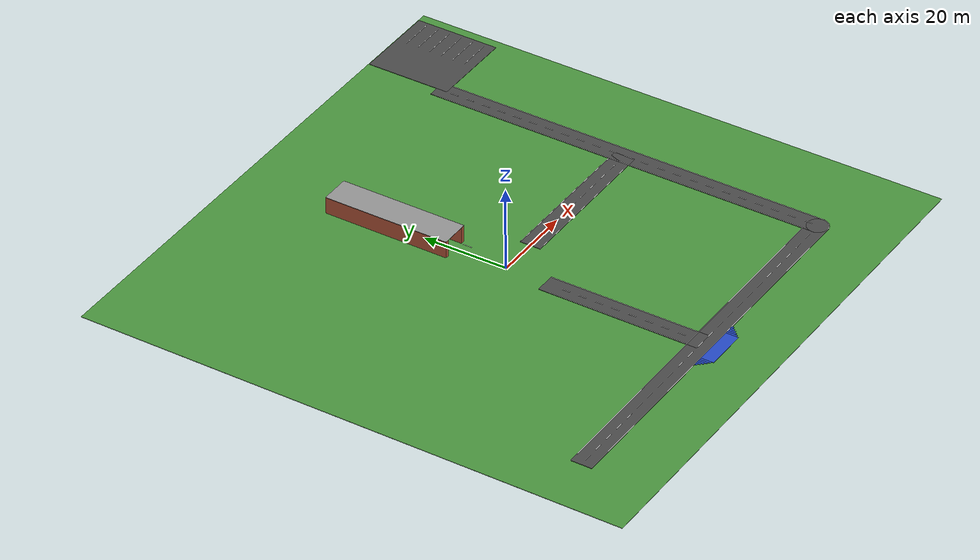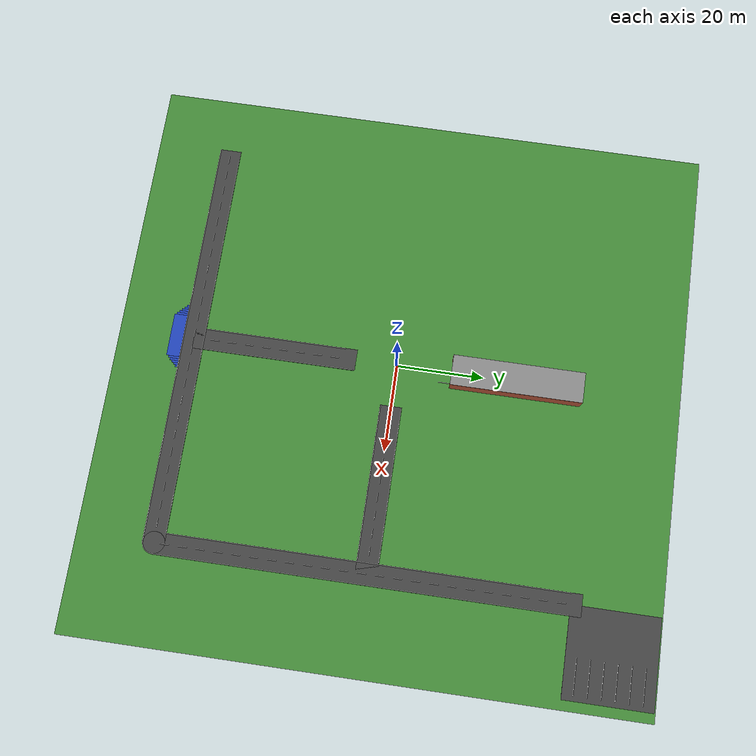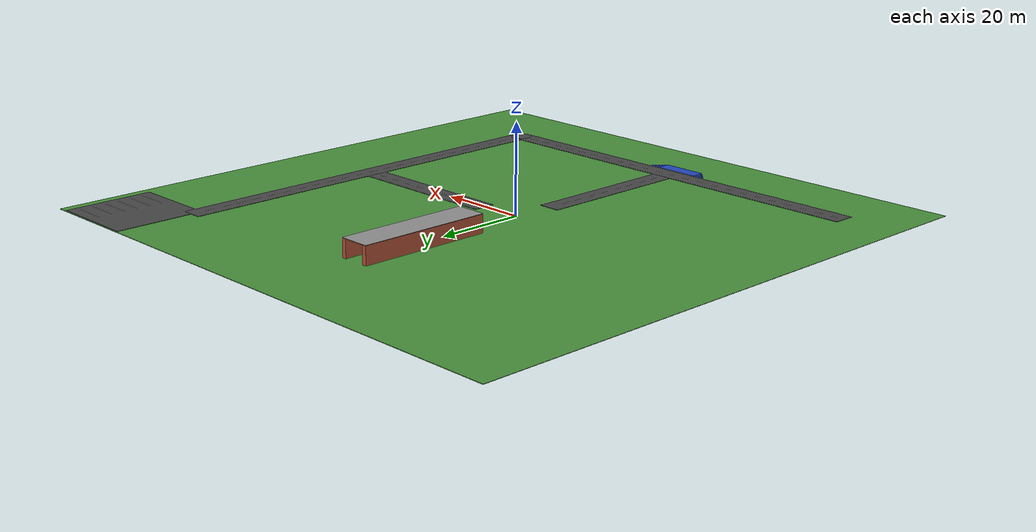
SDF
<sdf version="1.7">
 <world name="sehir_dunyasi_final_son_hali">
  <model name="sehir_blogu">
   <pose>4.7095 0.167784 0 0 -0 0</pose>
   <static>1</static>
   <link name="link">
    <collision name="ana_kara_coll">
     <pose>0 0 -0.1 0 -0 0</pose>
     <geometry><box><size>130 130 0.1</size></box></geometry>
    </collision>
    <visual name="ana_kara_visual">
     <pose>0 0 -0.1 0 -0 0</pose>
     <geometry><box><size>130 130 0.1</size></box></geometry>
     <material><script><name>Gazebo/Grass</name><uri>__default__</uri></script></material>
    </visual>
   </link>
  </model>
  <model name="yol_m_g">
   <static>1</static>
   <pose>2.2e-05 -28.5252 0 0 -0 1.5707</pose>
   <link name="link">
    <collision name="c"><geometry><box><size>38 5 0.1</size></box></geometry></collision>
    <visual name="v">
     <geometry><box><size>38 5 0.1</size></box></geometry>
     <material><script><name>Gazebo/DarkGrey</name><uri>__default__</uri></script></material>
    </visual>
    <visual name="vc1">
     <pose>-14 0 0.05 0 -0 0</pose>
     <geometry><box><size>2 0.15 0.005</size></box></geometry>
     <material><script><name>Gazebo/White</name><uri>__default__</uri></script></material>
    </visual>
    <visual name="vc2">
     <pose>-10 0 0.05 0 -0 0</pose>
     <geometry><box><size>2 0.15 0.005</size></box></geometry>
     <material><script><name>Gazebo/White</name><uri>__default__</uri></script></material>
    </visual>
    <visual name="vc3">
     <pose>-6 0 0.05 0 -0 0</pose>
     <geometry><box><size>2 0.15 0.005</size></box></geometry>
     <material><script><name>Gazebo/White</name><uri>__default__</uri></script></material>
    </visual>
    <visual name="vc4">
     <pose>-2 0 0.05 0 -0 0</pose>
     <geometry><box><size>2 0.15 0.005</size></box></geometry>
     <material><script><name>Gazebo/White</name><uri>__default__</uri></script></material>
    </visual>
    <visual name="vc5">
     <pose>2 0 0.05 0 -0 0</pose>
     <geometry><box><size>2 0.15 0.005</size></box></geometry>
     <material><script><name>Gazebo/White</name><uri>__default__</uri></script></material>
    </visual>
    <visual name="vc6">
     <pose>6 0 0.05 0 -0 0</pose>
     <geometry><box><size>2 0.15 0.005</size></box></geometry>
     <material><script><name>Gazebo/White</name><uri>__default__</uri></script></material>
    </visual>
    <visual name="vc7">
     <pose>10 0 0.05 0 -0 0</pose>
     <geometry><box><size>2 0.15 0.005</size></box></geometry>
     <material><script><name>Gazebo/White</name><uri>__default__</uri></script></material>
    </visual>
    <visual name="vc8">
     <pose>14 0 0.05 0 -0 0</pose>
     <geometry><box><size>2 0.15 0.005</size></box></geometry>
     <material><script><name>Gazebo/White</name><uri>__default__</uri></script></material>
    </visual>
    <visual name="sag_cizgi">
     <pose>0 2.4 0.05 0 -0 0</pose>
     <geometry><box><size>32.5 0.15 0.005</size></box></geometry>
     <material><script><name>Gazebo/White</name><uri>__default__</uri></script></material>
    </visual>
    <visual name="sol_cizgi">
     <pose>0 -2.4 0.05 0 -0 0</pose>
     <geometry><box><size>32.5 0.15 0.005</size></box></geometry>
     <material><script><name>Gazebo/White</name><uri>__default__</uri></script></material>
    </visual>
   </link>
  </model>
  <model name="yol_m_d">
   <static>1</static>
   <pose>28.5501 0 0 0 -0 0</pose>
   <link name="link">
    <collision name="c"><geometry><box><size>38 5 0.1</size></box></geometry></collision>
    <visual name="v">
     <geometry><box><size>38 5 0.1</size></box></geometry>
     <material><script><name>Gazebo/DarkGrey</name><uri>__default__</uri></script></material>
    </visual>
    <visual name="vc1">
     <pose>-14 0 0.05 0 -0 0</pose>
     <geometry><box><size>2 0.15 0.005</size></box></geometry>
     <material><script><name>Gazebo/White</name><uri>__default__</uri></script></material>
    </visual>
    <visual name="vc2">
     <pose>-10 0 0.05 0 -0 0</pose>
     <geometry><box><size>2 0.15 0.005</size></box></geometry>
     <material><script><name>Gazebo/White</name><uri>__default__</uri></script></material>
    </visual>
    <visual name="vc3">
     <pose>-6 0 0.05 0 -0 0</pose>
     <geometry><box><size>2 0.15 0.005</size></box></geometry>
     <material><script><name>Gazebo/White</name><uri>__default__</uri></script></material>
    </visual>
    <visual name="vc4">
     <pose>-2 0 0.05 0 -0 0</pose>
     <geometry><box><size>2 0.15 0.005</size></box></geometry>
     <material><script><name>Gazebo/White</name><uri>__default__</uri></script></material>
    </visual>
    <visual name="vc5">
     <pose>2 0 0.05 0 -0 0</pose>
     <geometry><box><size>2 0.15 0.005</size></box></geometry>
     <material><script><name>Gazebo/White</name><uri>__default__</uri></script></material>
    </visual>
    <visual name="vc6">
     <pose>6 0 0.05 0 -0 0</pose>
     <geometry><box><size>2 0.15 0.005</size></box></geometry>
     <material><script><name>Gazebo/White</name><uri>__default__</uri></script></material>
    </visual>
    <visual name="vc7">
     <pose>10 0 0.05 0 -0 0</pose>
     <geometry><box><size>2 0.15 0.005</size></box></geometry>
     <material><script><name>Gazebo/White</name><uri>__default__</uri></script></material>
    </visual>
    <visual name="vc8">
     <pose>14 0 0.05 0 -0 0</pose>
     <geometry><box><size>2 0.15 0.005</size></box></geometry>
     <material><script><name>Gazebo/White</name><uri>__default__</uri></script></material>
    </visual>
    <visual name="sag_cizgi">
     <pose>0 2.4 0.05 0 -0 0</pose>
     <geometry><box><size>32.5 0.15 0.005</size></box></geometry>
     <material><script><name>Gazebo/White</name><uri>__default__</uri></script></material>
    </visual>
    <visual name="sol_cizgi">
     <pose>0 -2.4 0.05 0 -0 0</pose>
     <geometry><box><size>32.5 0.15 0.005</size></box></geometry>
     <material><script><name>Gazebo/White</name><uri>__default__</uri></script></material>
    </visual>
   </link>
  </model>
  <model name="yol_g_yatay">
   <static>1</static>
   <pose>0 -47.5 0 0 -0 0</pose>
   <link name="link">
    <collision name="c"><geometry><box><size>95 5 0.1</size></box></geometry></collision>
    <visual name="v">
     <geometry><box><size>95 5 0.1</size></box></geometry>
     <material><script><name>Gazebo/DarkGrey</name><uri>__default__</uri></script></material>
    </visual>
    <visual name="vc1">
     <pose>-45 0 0.05 0 -0 0</pose>
     <geometry><box><size>2 0.15 0.005</size></box></geometry>
     <material><script><name>Gazebo/White</name><uri>__default__</uri></script></material>
    </visual>
    <visual name="vc2">
     <pose>-41 0 0.05 0 -0 0</pose>
     <geometry><box><size>2 0.15 0.005</size></box></geometry>
     <material><script><name>Gazebo/White</name><uri>__default__</uri></script></material>
    </visual>
    <visual name="vc3">
     <pose>-37 0 0.05 0 -0 0</pose>
     <geometry><box><size>2 0.15 0.005</size></box></geometry>
     <material><script><name>Gazebo/White</name><uri>__default__</uri></script></material>
    </visual>
    <visual name="vc4">
     <pose>-33 0 0.05 0 -0 0</pose>
     <geometry><box><size>2 0.15 0.005</size></box></geometry>
     <material><script><name>Gazebo/White</name><uri>__default__</uri></script></material>
    </visual>
    <visual name="vc5">
     <pose>-29 0 0.05 0 -0 0</pose>
     <geometry><box><size>2 0.15 0.005</size></box></geometry>
     <material><script><name>Gazebo/White</name><uri>__default__</uri></script></material>
    </visual>
    <visual name="vc6">
     <pose>-25 0 0.05 0 -0 0</pose>
     <geometry><box><size>2 0.15 0.005</size></box></geometry>
     <material><script><name>Gazebo/White</name><uri>__default__</uri></script></material>
    </visual>
    <visual name="vc7">
     <pose>-21 0 0.05 0 -0 0</pose>
     <geometry><box><size>2 0.15 0.005</size></box></geometry>
     <material><script><name>Gazebo/White</name><uri>__default__</uri></script></material>
    </visual>
    <visual name="vc8">
     <pose>-17 0 0.05 0 -0 0</pose>
     <geometry><box><size>2 0.15 0.005</size></box></geometry>
     <material><script><name>Gazebo/White</name><uri>__default__</uri></script></material>
    </visual>
    <visual name="vc9">
     <pose>-13 0 0.05 0 -0 0</pose>
     <geometry><box><size>2 0.15 0.005</size></box></geometry>
     <material><script><name>Gazebo/White</name><uri>__default__</uri></script></material>
    </visual>
    <visual name="vc10">
     <pose>-9 0 0.05 0 -0 0</pose>
     <geometry><box><size>2 0.15 0.005</size></box></geometry>
     <material><script><name>Gazebo/White</name><uri>__default__</uri></script></material>
    </visual>
    <visual name="vc11">
     <pose>-5 0 0.05 0 -0 0</pose>
     <geometry><box><size>2 0.15 0.005</size></box></geometry>
     <material><script><name>Gazebo/White</name><uri>__default__</uri></script></material>
    </visual>
    <visual name="vc12">
     <pose>-1 0 0.05 0 -0 0</pose>
     <geometry><box><size>2 0.15 0.005</size></box></geometry>
     <material><script><name>Gazebo/White</name><uri>__default__</uri></script></material>
    </visual>
    <visual name="vc13">
     <pose>3 0 0.05 0 -0 0</pose>
     <geometry><box><size>2 0.15 0.005</size></box></geometry>
     <material><script><name>Gazebo/White</name><uri>__default__</uri></script></material>
    </visual>
    <visual name="vc14">
     <pose>7 0 0.05 0 -0 0</pose>
     <geometry><box><size>2 0.15 0.005</size></box></geometry>
     <material><script><name>Gazebo/White</name><uri>__default__</uri></script></material>
    </visual>
    <visual name="vc15">
     <pose>11 0 0.05 0 -0 0</pose>
     <geometry><box><size>2 0.15 0.005</size></box></geometry>
     <material><script><name>Gazebo/White</name><uri>__default__</uri></script></material>
    </visual>
    <visual name="vc16">
     <pose>15 0 0.05 0 -0 0</pose>
     <geometry><box><size>2 0.15 0.005</size></box></geometry>
     <material><script><name>Gazebo/White</name><uri>__default__</uri></script></material>
    </visual>
    <visual name="vc17">
     <pose>19 0 0.05 0 -0 0</pose>
     <geometry><box><size>2 0.15 0.005</size></box></geometry>
     <material><script><name>Gazebo/White</name><uri>__default__</uri></script></material>
    </visual>
    <visual name="vc18">
     <pose>23 0 0.05 0 -0 0</pose>
     <geometry><box><size>2 0.15 0.005</size></box></geometry>
     <material><script><name>Gazebo/White</name><uri>__default__</uri></script></material>
    </visual>
    <visual name="vc19">
     <pose>27 0 0.05 0 -0 0</pose>
     <geometry><box><size>2 0.15 0.005</size></box></geometry>
     <material><script><name>Gazebo/White</name><uri>__default__</uri></script></material>
    </visual>
    <visual name="vc20">
     <pose>31 0 0.05 0 -0 0</pose>
     <geometry><box><size>2 0.15 0.005</size></box></geometry>
     <material><script><name>Gazebo/White</name><uri>__default__</uri></script></material>
    </visual>
    <visual name="vc21">
     <pose>35 0 0.05 0 -0 0</pose>
     <geometry><box><size>2 0.15 0.005</size></box></geometry>
     <material><script><name>Gazebo/White</name><uri>__default__</uri></script></material>
    </visual>
    <visual name="vc22">
     <pose>39 0 0.05 0 -0 0</pose>
     <geometry><box><size>2 0.15 0.005</size></box></geometry>
     <material><script><name>Gazebo/White</name><uri>__default__</uri></script></material>
    </visual>
    <visual name="vc23">
     <pose>43 0 0.05 0 -0 0</pose>
     <geometry><box><size>2 0.15 0.005</size></box></geometry>
     <material><script><name>Gazebo/White</name><uri>__default__</uri></script></material>
    </visual>
    <visual name="sag_cizgi">
     <pose>0 2.4 0.05 0 -0 0</pose>
     <geometry><box><size>90.35 0.15 0.005</size></box></geometry>
     <material><script><name>Gazebo/White</name><uri>__default__</uri></script></material>
    </visual>
    <visual name="sol_cizgi">
     <pose>0 -2.4 0.05 0 -0 0</pose>
     <geometry><box><size>95 0.15 0.005</size></box></geometry>
     <material><script><name>Gazebo/White</name><uri>__default__</uri></script></material>
    </visual>
   </link>
  </model>
  <model name="yol_d_dikey">
   <static>1</static>
   <pose>47.5 0 0 0 -0 1.5707</pose>
   <link name="link">
    <collision name="c"><geometry><box><size>95 5 0.1</size></box></geometry></collision>
    <visual name="v">
     <geometry><box><size>95 5 0.1</size></box></geometry>
     <material><script><name>Gazebo/DarkGrey</name><uri>__default__</uri></script></material>
    </visual>
    <visual name="vc1">
     <pose>-45 0 0.05 0 -0 0</pose>
     <geometry><box><size>2 0.15 0.005</size></box></geometry>
     <material><script><name>Gazebo/White</name><uri>__default__</uri></script></material>
    </visual>
    <visual name="vc2">
     <pose>-41 0 0.05 0 -0 0</pose>
     <geometry><box><size>2 0.15 0.005</size></box></geometry>
     <material><script><name>Gazebo/White</name><uri>__default__</uri></script></material>
    </visual>
    <visual name="vc3">
     <pose>-37 0 0.05 0 -0 0</pose>
     <geometry><box><size>2 0.15 0.005</size></box></geometry>
     <material><script><name>Gazebo/White</name><uri>__default__</uri></script></material>
    </visual>
    <visual name="vc4">
     <pose>-33 0 0.05 0 -0 0</pose>
     <geometry><box><size>2 0.15 0.005</size></box></geometry>
     <material><script><name>Gazebo/White</name><uri>__default__</uri></script></material>
    </visual>
    <visual name="vc5">
     <pose>-29 0 0.05 0 -0 0</pose>
     <geometry><box><size>2 0.15 0.005</size></box></geometry>
     <material><script><name>Gazebo/White</name><uri>__default__</uri></script></material>
    </visual>
    <visual name="vc6">
     <pose>-25 0 0.05 0 -0 0</pose>
     <geometry><box><size>2 0.15 0.005</size></box></geometry>
     <material><script><name>Gazebo/White</name><uri>__default__</uri></script></material>
    </visual>
    <visual name="vc7">
     <pose>-21 0 0.05 0 -0 0</pose>
     <geometry><box><size>2 0.15 0.005</size></box></geometry>
     <material><script><name>Gazebo/White</name><uri>__default__</uri></script></material>
    </visual>
    <visual name="vc8">
     <pose>-17 0 0.05 0 -0 0</pose>
     <geometry><box><size>2 0.15 0.005</size></box></geometry>
     <material><script><name>Gazebo/White</name><uri>__default__</uri></script></material>
    </visual>
    <visual name="vc9">
     <pose>-13 0 0.05 0 -0 0</pose>
     <geometry><box><size>2 0.15 0.005</size></box></geometry>
     <material><script><name>Gazebo/White</name><uri>__default__</uri></script></material>
    </visual>
    <visual name="vc10">
     <pose>-9 0 0.05 0 -0 0</pose>
     <geometry><box><size>2 0.15 0.005</size></box></geometry>
     <material><script><name>Gazebo/White</name><uri>__default__</uri></script></material>
    </visual>
    <visual name="vc11">
     <pose>-5 0 0.05 0 -0 0</pose>
     <geometry><box><size>2 0.15 0.005</size></box></geometry>
     <material><script><name>Gazebo/White</name><uri>__default__</uri></script></material>
    </visual>
    <visual name="vc12">
     <pose>-1 0 0.05 0 -0 0</pose>
     <geometry><box><size>2 0.15 0.005</size></box></geometry>
     <material><script><name>Gazebo/White</name><uri>__default__</uri></script></material>
    </visual>
    <visual name="vc13">
     <pose>3 0 0.05 0 -0 0</pose>
     <geometry><box><size>2 0.15 0.005</size></box></geometry>
     <material><script><name>Gazebo/White</name><uri>__default__</uri></script></material>
    </visual>
    <visual name="vc14">
     <pose>7 0 0.05 0 -0 0</pose>
     <geometry><box><size>2 0.15 0.005</size></box></geometry>
     <material><script><name>Gazebo/White</name><uri>__default__</uri></script></material>
    </visual>
    <visual name="vc15">
     <pose>11 0 0.05 0 -0 0</pose>
     <geometry><box><size>2 0.15 0.005</size></box></geometry>
     <material><script><name>Gazebo/White</name><uri>__default__</uri></script></material>
    </visual>
    <visual name="vc16">
     <pose>15 0 0.05 0 -0 0</pose>
     <geometry><box><size>2 0.15 0.005</size></box></geometry>
     <material><script><name>Gazebo/White</name><uri>__default__</uri></script></material>
    </visual>
    <visual name="vc17">
     <pose>19 0 0.05 0 -0 0</pose>
     <geometry><box><size>2 0.15 0.005</size></box></geometry>
     <material><script><name>Gazebo/White</name><uri>__default__</uri></script></material>
    </visual>
    <visual name="vc18">
     <pose>23 0 0.05 0 -0 0</pose>
     <geometry><box><size>2 0.15 0.005</size></box></geometry>
     <material><script><name>Gazebo/White</name><uri>__default__</uri></script></material>
    </visual>
    <visual name="vc19">
     <pose>27 0 0.05 0 -0 0</pose>
     <geometry><box><size>2 0.15 0.005</size></box></geometry>
     <material><script><name>Gazebo/White</name><uri>__default__</uri></script></material>
    </visual>
    <visual name="vc20">
     <pose>31 0 0.05 0 -0 0</pose>
     <geometry><box><size>2 0.15 0.005</size></box></geometry>
     <material><script><name>Gazebo/White</name><uri>__default__</uri></script></material>
    </visual>
    <visual name="vc21">
     <pose>35 0 0.05 0 -0 0</pose>
     <geometry><box><size>2 0.15 0.005</size></box></geometry>
     <material><script><name>Gazebo/White</name><uri>__default__</uri></script></material>
    </visual>
    <visual name="vc22">
     <pose>39 0 0.05 0 -0 0</pose>
     <geometry><box><size>2 0.15 0.005</size></box></geometry>
     <material><script><name>Gazebo/White</name><uri>__default__</uri></script></material>
    </visual>
    <visual name="vc23">
     <pose>43 0 0.05 0 -0 0</pose>
     <geometry><box><size>2 0.15 0.005</size></box></geometry>
     <material><script><name>Gazebo/White</name><uri>__default__</uri></script></material>
    </visual>
    <visual name="sag_cizgi">
     <pose>0 2.4 0.05 0 -0 0</pose>
     <geometry><box><size>90.35 0.15 0.005</size></box></geometry>
     <material><script><name>Gazebo/White</name><uri>__default__</uri></script></material>
    </visual>
    <visual name="sol_cizgi">
     <pose>-2.55 -2.4 0.05 0 -0 0</pose>
     <geometry><box><size>90 0.15 0.005</size></box></geometry>
     <material><script><name>Gazebo/White</name><uri>__default__</uri></script></material>
    </visual>
   </link>
  </model>
  <model name="tunel">
   <static>1</static>
   <pose>0 27.5 0 0 -0 0</pose>
   <link name="tunel_link">
    <visual name="sol_duvar">
     <pose>-3 0 2 0 -0 0</pose>
     <geometry><box><size>1 30 4</size></box></geometry>
     <material><script><name>Gazebo/Bricks</name><uri>__default__</uri></script></material>
    </visual>
    <collision name="sol_duvar_coll">
     <pose>-3 0 2 0 -0 0</pose>
     <geometry><box><size>1 30 4</size></box></geometry>
    </collision>
    <visual name="sag_duvar">
     <pose>3 0 2 0 -0 0</pose>
     <geometry><box><size>1 30 4</size></box></geometry>
     <material><script><name>Gazebo/Bricks</name><uri>__default__</uri></script></material>
    </visual>
    <collision name="sag_duvar_coll">
     <pose>3 0 2 0 -0 0</pose>
     <geometry><box><size>1 30 4</size></box></geometry>
    </collision>
    <visual name="tavan">
     <pose>0 0 4.05 0 -0 0</pose>
     <geometry><box><size>7 30 0.1</size></box></geometry>
     <material><script><name>Gazebo/Grey</name><uri>__default__</uri></script></material>
    </visual>
    <collision name="tavan_coll">
     <pose>0 0 4.05 0 -0 0</pose>
     <geometry><box><size>7 30 0.1</size></box></geometry>
    </collision>
   </link>
  </model>
  <model name="otopark">
   <static>1</static>
   <pose>57.4997 54.9474 0 0 -0 3.14159</pose>
   <link name="otopark_link">
    <visual name="zemin">
     <geometry><box><size>20 20 0.1</size></box></geometry>
     <material><script><name>Gazebo/DarkGrey</name><uri>__default__</uri></script></material>
    </visual>
    <collision name="zemin_c"><geometry><box><size>20 20 0.1</size></box></geometry></collision>
    <visual name="cizgi_1">
     <pose>-5 -7.5 0.05 0 -0 0</pose>
     <geometry><box><size>8 0.15 0.005</size></box></geometry>
     <material><script><name>Gazebo/White</name><uri>__default__</uri></script></material>
    </visual>
    <visual name="cizgi_2">
     <pose>-5 -4.5 0.05 0 -0 0</pose>
     <geometry><box><size>8 0.15 0.005</size></box></geometry>
     <material><script><name>Gazebo/White</name><uri>__default__</uri></script></material>
    </visual>
    <visual name="cizgi_3">
     <pose>-5 -1.5 0.05 0 -0 0</pose>
     <geometry><box><size>8 0.15 0.005</size></box></geometry>
     <material><script><name>Gazebo/White</name><uri>__default__</uri></script></material>
    </visual>
    <visual name="cizgi_4">
     <pose>-5 1.5 0.05 0 -0 0</pose>
     <geometry><box><size>8 0.15 0.005</size></box></geometry>
     <material><script><name>Gazebo/White</name><uri>__default__</uri></script></material>
    </visual>
    <visual name="cizgi_5">
     <pose>-5 4.5 0.05 0 -0 0</pose>
     <geometry><box><size>8 0.15 0.005</size></box></geometry>
     <material><script><name>Gazebo/White</name><uri>__default__</uri></script></material>
    </visual>
    <visual name="cizgi_6">
     <pose>-5 7.5 0.05 0 -0 0</pose>
     <geometry><box><size>8 0.15 0.005</size></box></geometry>
     <material><script><name>Gazebo/White</name><uri>__default__</uri></script></material>
    </visual>
   </link>
  </model>
  <model name="durak_cebi_guney">
   <static>1</static>
   <pose>0 -50 0.1 0 -0 0</pose>
   <link name="link">
    <visual name="visual_center">
     <pose>0 -1.5 0 0 -0 0</pose>
     <geometry><box><size>10 3 0.1</size></box></geometry>
     <material><script><name>Gazebo/Blue</name><uri>__default__</uri></script></material>
    </visual>
    <collision name="collision_center">
     <pose>0 -1.5 0 0 -0 0</pose>
     <geometry><box><size>10 3 0.1</size></box></geometry>
    </collision>
    <visual name="v_r1">
     <pose>5.25 -1.25 0 0 -0 0</pose>
     <geometry><box><size>0.5 2.5 0.1</size></box></geometry>
     <material><script><name>Gazebo/Blue</name><uri>__default__</uri></script></material>
    </visual>
    <visual name="v_r2">
     <pose>5.75 -1 0 0 -0 0</pose>
     <geometry><box><size>0.5 2 0.1</size></box></geometry>
     <material><script><name>Gazebo/Blue</name><uri>__default__</uri></script></material>
    </visual>
    <visual name="v_r3">
     <pose>6.25 -0.75 0 0 -0 0</pose>
     <geometry><box><size>0.5 1.5 0.1</size></box></geometry>
     <material><script><name>Gazebo/Blue</name><uri>__default__</uri></script></material>
    </visual>
    <visual name="v_r4">
     <pose>6.75 -0.5 0 0 -0 0</pose>
     <geometry><box><size>0.5 1 0.1</size></box></geometry>
     <material><script><name>Gazebo/Blue</name><uri>__default__</uri></script></material>
    </visual>
    <visual name="v_r5">
     <pose>7.25 -0.25 0 0 -0 0</pose>
     <geometry><box><size>0.5 0.5 0.1</size></box></geometry>
     <material><script><name>Gazebo/Blue</name><uri>__default__</uri></script></material>
    </visual>
    <collision name="c_r1">
     <pose>5.25 -1.25 0 0 -0 0</pose>
     <geometry><box><size>0.5 2.5 0.1</size></box></geometry>
    </collision>
    <collision name="c_r2">
     <pose>5.75 -1 0 0 -0 0</pose>
     <geometry><box><size>0.5 2 0.1</size></box></geometry>
    </collision>
    <collision name="c_r3">
     <pose>6.25 -0.75 0 0 -0 0</pose>
     <geometry><box><size>0.5 1.5 0.1</size></box></geometry>
    </collision>
    <collision name="c_r4">
     <pose>6.75 -0.5 0 0 -0 0</pose>
     <geometry><box><size>0.5 1 0.1</size></box></geometry>
    </collision>
    <collision name="c_r5">
     <pose>7.25 -0.25 0 0 -0 0</pose>
     <geometry><box><size>0.5 0.5 0.1</size></box></geometry>
    </collision>
    <visual name="v_l1">
     <pose>-5.25 -1.25 0 0 -0 0</pose>
     <geometry><box><size>0.5 2.5 0.1</size></box></geometry>
     <material><script><name>Gazebo/Blue</name><uri>__default__</uri></script></material>
    </visual>
    <visual name="v_l2">
     <pose>-5.75 -1 0 0 -0 0</pose>
     <geometry><box><size>0.5 2 0.1</size></box></geometry>
     <material><script><name>Gazebo/Blue</name><uri>__default__</uri></script></material>
    </visual>
    <visual name="v_l3">
     <pose>-6.25 -0.75 0 0 -0 0</pose>
     <geometry><box><size>0.5 1.5 0.1</size></box></geometry>
     <material><script><name>Gazebo/Blue</name><uri>__default__</uri></script></material>
    </visual>
    <visual name="v_l4">
     <pose>-6.75 -0.5 0 0 -0 0</pose>
     <geometry><box><size>0.5 1 0.1</size></box></geometry>
     <material><script><name>Gazebo/Blue</name><uri>__default__</uri></script></material>
    </visual>
    <visual name="v_l5">
     <pose>-7.25 -0.25 0 0 -0 0</pose>
     <geometry><box><size>0.5 0.5 0.1</size></box></geometry>
     <material><script><name>Gazebo/Blue</name><uri>__default__</uri></script></material>
    </visual>
    <collision name="c_l1">
     <pose>-5.25 -1.25 0 0 -0 0</pose>
     <geometry><box><size>0.5 2.5 0.1</size></box></geometry>
    </collision>
    <collision name="c_l2">
     <pose>-5.75 -1 0 0 -0 0</pose>
     <geometry><box><size>0.5 2 0.1</size></box></geometry>
    </collision>
    <collision name="c_l3">
     <pose>-6.25 -0.75 0 0 -0 0</pose>
     <geometry><box><size>0.5 1.5 0.1</size></box></geometry>
    </collision>
    <collision name="c_l4">
     <pose>-6.75 -0.5 0 0 -0 0</pose>
     <geometry><box><size>0.5 1 0.1</size></box></geometry>
    </collision>
    <collision name="c_l5">
     <pose>-7.25 -0.25 0 0 -0 0</pose>
     <geometry><box><size>0.5 0.5 0.1</size></box></geometry>
    </collision>
   </link>
  </model>
  <model name="unit_box_clone">
   <static>1</static>
   <pose>11.2573 2.3997 0.049587 9e-06 -0 -1.56844</pose>
   <link name="link">
    <inertial>
     <mass>1</mass>
     <inertia>
      <ixx>0.166667</ixx>
      <ixy>0</ixy>
      <ixz>0</ixz>
      <iyy>0.166667</iyy>
      <iyz>0</iyz>
      <izz>0.166667</izz>
     </inertia>
    </inertial>
    <collision name="collision"><geometry><box><size>0.149117 2.48727 0.003914</size></box></geometry></collision>
    <visual name="visual">
     <geometry><box><size>0.149117 2.48727 0.003914</size></box></geometry>
     <material>
      <script><name>Gazebo/White</name><uri>file://media/materials/scripts/gazebo.material</uri></script>
     </material>
    </visual>
   </link>
  </model>
  <model name="unit_box_clone_1">
   <static>1</static>
   <pose>2.39959 -11.04 0.050964 -0 -9e-06 0.001186</pose>
   <link name="link">
    <inertial>
     <mass>1</mass>
     <inertia>
      <ixx>0.166667</ixx>
      <ixy>0</ixy>
      <ixz>0</ixz>
      <iyy>0.166667</iyy>
      <iyz>0</iyz>
      <izz>0.166667</izz>
     </inertia>
    </inertial>
    <collision name="collision"><geometry><box><size>0.149117 2.48727 0.003914</size></box></geometry></collision>
    <visual name="visual">
     <geometry><box><size>0.149117 2.48727 0.003914</size></box></geometry>
     <material>
      <script><name>Gazebo/White</name><uri>file://media/materials/scripts/gazebo.material</uri></script>
     </material>
    </visual>
   </link>
  </model>
  <model name="unit_box_clone_6">
   <static>1</static>
   <pose>2.39845 11.1268 0.050983 -0 -9e-06 -3e-06</pose>
   <link name="link">
    <inertial>
     <mass>1</mass>
     <inertia>
      <ixx>0.166667</ixx>
      <ixy>0</ixy>
      <ixz>0</ixz>
      <iyy>0.166667</iyy>
      <iyz>0</iyz>
      <izz>0.166667</izz>
     </inertia>
    </inertial>
    <collision name="collision"><geometry><box><size>0.149117 2.48727 0.003914</size></box></geometry></collision>
    <visual name="visual">
     <geometry><box><size>0.149117 2.48727 0.003914</size></box></geometry>
     <material>
      <script><name>Gazebo/White</name><uri>file://media/materials/scripts/gazebo.material</uri></script>
     </material>
    </visual>
   </link>
  </model>
  <model name="unit_box_clone_7">
   <static>1</static>
   <pose>11.2607 -2.39322 0.051184 9e-06 -0 -1.57621</pose>
   <link name="link">
    <inertial>
     <mass>1</mass>
     <inertia>
      <ixx>0.166667</ixx>
      <ixy>0</ixy>
      <ixz>0</ixz>
      <iyy>0.166667</iyy>
      <iyz>0</iyz>
      <izz>0.166667</izz>
     </inertia>
    </inertial>
    <collision name="collision"><geometry><box><size>0.149117 2.48727 0.003914</size></box></geometry></collision>
    <visual name="visual">
     <geometry><box><size>0.149117 2.48727 0.003914</size></box></geometry>
     <material>
      <script><name>Gazebo/White</name><uri>file://media/materials/scripts/gazebo.material</uri></script>
     </material>
    </visual>
   </link>
  </model>
  <model name="unit_cylinder_clone_0_clone">
   <static>1</static>
   <pose>47.259 -47.2722 -0.046983 0 -2e-06 0.003834</pose>
   <link name="link">
    <inertial>
     <mass>1</mass>
     <inertia><ixx>0.145833</ixx><ixy>0</ixy><ixz>0</ixz><iyy>0.145833</iyy><iyz>0</iyz><izz>0.125</izz></inertia>
    </inertial>
    <collision name="collision">
     <geometry><cylinder><radius>2.72533</radius><length>0.146656</length></cylinder></geometry>
    </collision>
    <visual name="visual">
     <geometry><cylinder><radius>2.72533</radius><length>0.146656</length></cylinder></geometry>
     <material>
      <script><name>Gazebo/White</name><uri>file://media/materials/scripts/gazebo.material</uri></script>
     </material>
    </visual>
   </link>
  </model>
  <model name="unit_cylinder_clone_clone_clone">
   <static>1</static>
   <pose>47.3794 -47.3746 -0.080114 0 -2e-06 0.003834</pose>
   <link name="link">
    <inertial>
     <mass>1</mass>
     <inertia><ixx>0.145833</ixx><ixy>0</ixy><ixz>0</ixz><iyy>0.145833</iyy><iyz>0</iyz><izz>0.125</izz></inertia>
    </inertial>
    <collision name="collision">
     <geometry><cylinder><radius>2.44847</radius><length>0.261634</length></cylinder></geometry>
    </collision>
    <visual name="visual">
     <geometry><cylinder><radius>2.44847</radius><length>0.261634</length></cylinder></geometry>
     <material>
      <script><name>Gazebo/DarkGrey</name><uri>file://media/materials/scripts/gazebo.material</uri></script>
     </material>
    </visual>
   </link>
  </model>
  <model name="unit_box">
   <static>1</static>
   <pose>49.9041 43.3246 0.046038 0 -0 0</pose>
   <link name="link">
    <inertial>
     <mass>1</mass>
     <inertia>
      <ixx>0.166667</ixx>
      <ixy>0</ixy>
      <ixz>0</ixz>
      <iyy>0.166667</iyy>
      <iyz>0</iyz>
      <izz>0.166667</izz>
     </inertia>
    </inertial>
    <collision name="collision">
     <geometry><box><size>0.150012 3.24458 0.0134348</size></box></geometry>
    </collision>
    <visual name="visual">
     <geometry><box><size>0.150012 3.24458 0.0134348</size></box></geometry>
     <material>
      <script><name>Gazebo/White</name><uri>file://media/materials/scripts/gazebo.material</uri></script>
     </material>
    </visual>
   </link>
  </model>
 </world>
</sdf>
